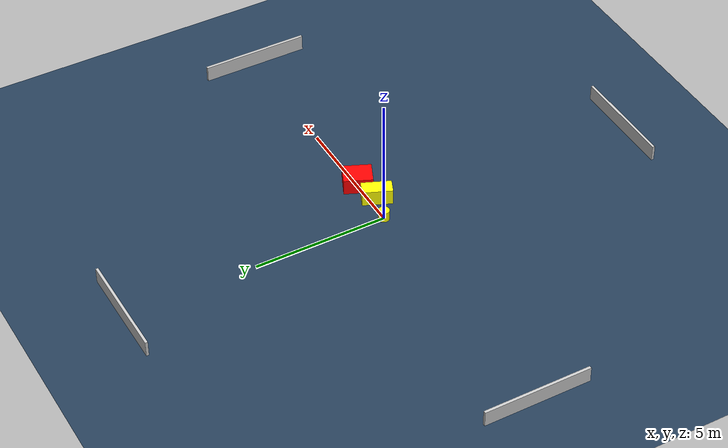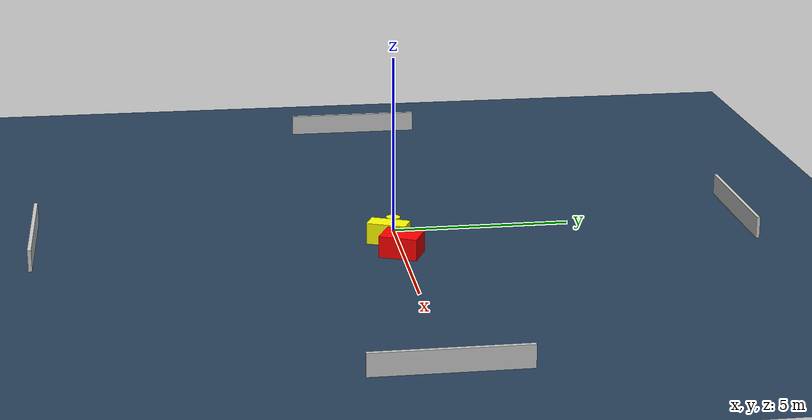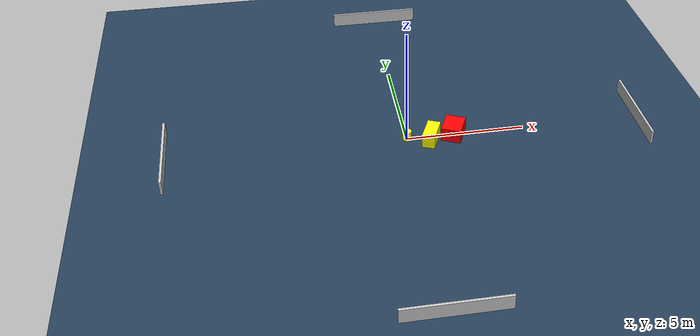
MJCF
<?xml version="1.0" ?>
<mujoco model="generated_environment">
  <option timestep="0.01" integrator="RK4" cone="elliptic"/>
  <default>
    <geom density="1"/>
  </default>
  <asset>
    <texture builtin="gradient" height="3072" name="skybox" rgb1="0.3 0.5 0.7" rgb2="0 0 0" type="skybox" width="512"/>
    <texture builtin="checker" height="300" name="groundplane" rgb1="0.2 0.3 0.4" rgb2="0.1 0.2 0.3" type="2d" width="300"/>
    <material name="groundplane" reflectance="0.2" texrepeat="5 5" texture="groundplane"/>
  </asset>
  <worldbody>
    <light dir="0 0 -1" directional="true" pos="0 0 1.5"/>
    <geom condim="3" friction="0.5 0.005 0.001" material="groundplane" name="floor" pos="0 0 0" size="0 0 0.05" type="plane"/>
    <body name="walls">
      <geom name="wall_1" condim="4" pos="-10.0 0.0 0.3" rgba="0.800000011920929 0.800000011920929 0.800000011920929 1.0" size="0.05 2.0 0.3" type="box"/>
      <geom name="wall_2" condim="4" pos="10.0 0.0 0.3" rgba="0.800000011920929 0.800000011920929 0.800000011920929 1.0" size="0.05 2.0 0.3" type="box"/>
      <geom name="wall_3" condim="4" pos="0.0 -10.0 0.3" rgba="0.800000011920929 0.800000011920929 0.800000011920929 1.0" size="2.0 0.05 0.3" type="box"/>
      <geom name="wall_4" condim="4" pos="0.0 10.0 0.3" rgba="0.800000011920929 0.800000011920929 0.800000011920929 1.0" size="2.0 0.05 0.3" type="box"/>
    </body>
    <body name="robot">
      <joint name="joint_x" type="slide" pos="0 0 0" axis="1 0 0"/>
      <joint name="joint_y" type="slide" pos="0 0 0" axis="0 1 0"/>
      <geom name="robot" type="cylinder" pos="0.0 0.0 0.2" size="0.2 0.2 0.0" mass="5.0" friction="1.0 0.005 0.0001" condim="4" rgba="1.0 1.0 0.0 1.0"/>
    </body>
    <body name="obstacle_1_movable">
      <geom name="obstacle_1_movable" condim="4" pos="0.9957051013914313 -0.26716429990122215 0.3" euler="0 0 66.58645866326718" friction="0.0 0.005 0.001" rgba="1.0 1.0 0.0 1.0" size="0.5545135368706127 0.2736600717149568 0.3" type="box" mass="0.1"/>
      <joint type="free"/>
    </body>
    <body name="obstacle_2_static">
      <geom name="obstacle_2_static" condim="4" pos="1.9824511247479775 -0.03294555685720595 0.3" euler="0 0 65.80174252487808" friction="0.0 0.005 0.001" rgba="1.0 0.0 0.0 1.0" size="0.5299073466399578 0.42070946714706087 0.3" type="box"/>
    </body>
  </worldbody>
  <actuator>
    <motor name="actuator_x" joint="joint_x" gear="1" ctrlrange="-1 1"/>
    <motor name="actuator_y" joint="joint_y" gear="1" ctrlrange="-1 1"/>
  </actuator>
</mujoco>
